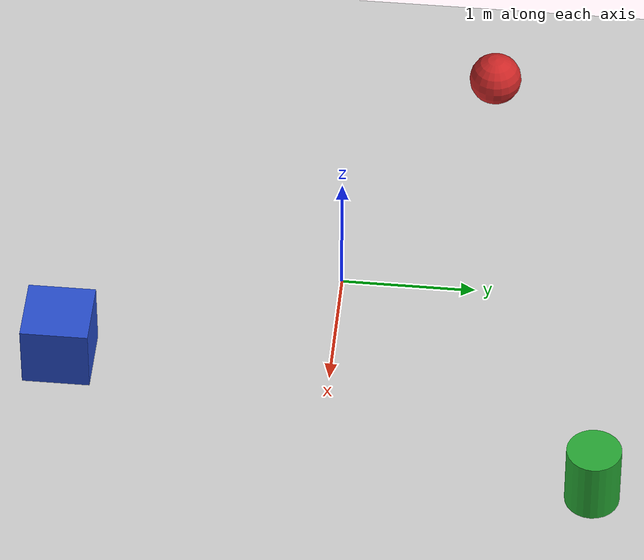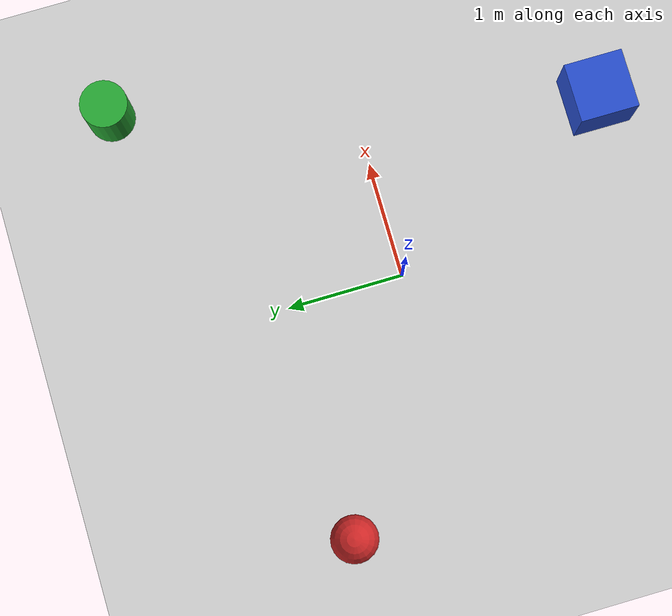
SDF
<?xml version="1.0" ?>
<sdf version="1.6">
  <world name="shape_world">

    <include>
      <uri>model://ground_plane</uri>
    </include>

    <model name="target_ball">
      <pose>-2 1 0.3 0 0 0</pose>
      <static>true</static>
      <link name="link">
        <visual name="visual">
          <geometry><sphere><radius>0.2</radius></sphere></geometry>
          <material>
            <script><uri>file://media/materials/scripts/gazebo.material</uri><name>Gazebo/Red</name></script>
          </material>
        </visual>
        <collision name="collision">
          <geometry><sphere><radius>0.2</radius></sphere></geometry>
        </collision>
      </link>
    </model>

    <model name="target_box">
      <pose>1 -2 0.25 0 0 0</pose>
      <static>true</static>
      <link name="link">
        <visual name="visual">
          <geometry><box><size>0.5 0.5 0.5</size></box></geometry>
          <material>
            <script><uri>file://media/materials/scripts/gazebo.material</uri><name>Gazebo/Blue</name></script>
          </material>
        </visual>
        <collision name="collision">
          <geometry><box><size>0.5 0.5 0.5</size></box></geometry>
        </collision>
      </link>
    </model>

    <model name="target_cylinder">
      <pose>2 2 0.2 0 0 0</pose>
      <static>true</static>
      <link name="link">
        <visual name="visual">
          <geometry><cylinder><radius>0.2</radius><length>0.6</length></cylinder></geometry>
          <material>
            <script><uri>file://media/materials/scripts/gazebo.material</uri><name>Gazebo/Green</name></script>
          </material>
        </visual>
        <collision name="collision">
          <geometry><cylinder><radius>0.2</radius><length>0.6</length></cylinder></geometry>
        </collision>
      </link>
    </model>

  </world>
</sdf>
